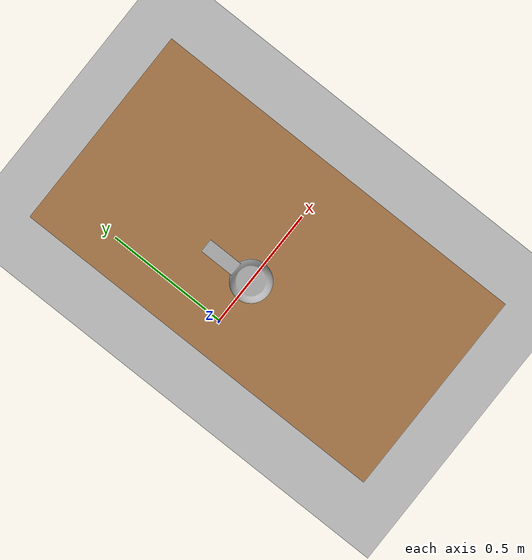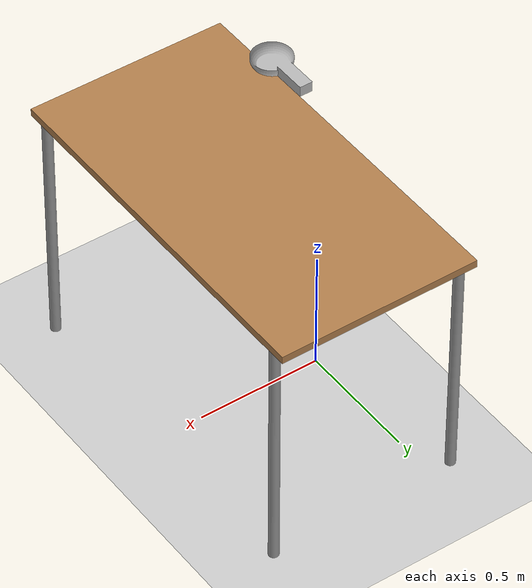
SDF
<?xml version="1.0" ?>
<sdf version="1.6">
  <world name="CRANE-X7 with Table">
    <scene>
      <shadows>0</shadows>
    </scene>

    <include>
      <uri>model://sun</uri>
    </include>

    <model name="table">
      <include>
        <uri>model://table</uri>
      </include>

      <!-- X7を机の端に配置するため、机を移動、回転する -->
      <pose>0.29 0 0 0 0 1.5708</pose>
    </model>

    <model name="flypan">
      <include>
        <uri>model://flypan</uri>
      </include>

      <pose>0.20 0 1.0 0 0 0</pose>
    </model>

    <model name="ground_plane">
      <include>
        <uri>model://ground_plane</uri>
      </include>

      <joint name='ground_joint' type='fixed'>
        <parent>ground_plane::link</parent>
        <child>table::link</child>
      </joint>
    </model>
  </world>
</sdf>

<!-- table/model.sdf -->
<sdf version="1.5">
  <model name="table">
    <static>true</static>
    <link name="link">
      <collision name="surface">
        <pose>0 0 1.0 0 0 0</pose>
        <geometry>
          <box>
            <size>1.5 0.8 0.03</size>
          </box>
        </geometry>
        <surface>
          <friction>
            <ode>
              <mu>0.6</mu>
              <mu2>0.6</mu2>
            </ode>
          </friction>
        </surface>
      </collision>
      <visual name="visual1">
        <pose>0 0 1.0 0 0 0</pose>
        <geometry>
          <box>
            <size>1.5 0.8 0.03</size>
          </box>
        </geometry>
        <material>
          <script>
            <uri>model://media/materials/scripts/gazebo.material</uri>
            <name>Gazebo/Wood</name>
          </script>
        </material>
      </visual>
      <collision name="front_left_leg">
        <pose>0.68 0.38 0.5 0 0 0</pose>
        <geometry>
          <cylinder>
            <radius>0.02</radius>
            <length>1.0</length>
          </cylinder>
        </geometry>
      </collision>
      <visual name="front_left_leg">
        <pose>0.68 0.38 0.5 0 0 0</pose>
        <geometry>
          <cylinder>
            <radius>0.02</radius>
            <length>1.0</length>
          </cylinder>
        </geometry>
        <material>
          <script>
            <uri>model://media/materials/scripts/gazebo.material</uri>
            <name>Gazebo/Grey</name>
          </script>
        </material>
      </visual>
      <collision name="front_right_leg">
        <pose>0.68 -0.38 0.5 0 0 0</pose>
        <geometry>
          <cylinder>
            <radius>0.02</radius>
            <length>1.0</length>
          </cylinder>
        </geometry>
      </collision>
      <visual name="front_right_leg">
        <pose>0.68 -0.38 0.5 0 0 0</pose>
        <geometry>
          <cylinder>
            <radius>0.02</radius>
            <length>1.0</length>
          </cylinder>
        </geometry>
        <material>
          <script>
            <uri>model://media/materials/scripts/gazebo.material</uri>
            <name>Gazebo/Grey</name>
          </script>
        </material>
      </visual>
      <collision name="back_right_leg">
        <pose>-0.68 -0.38 0.5 0 0 0</pose>
        <geometry>
          <cylinder>
            <radius>0.02</radius>
            <length>1.0</length>
          </cylinder>
        </geometry>
      </collision>
      <visual name="back_right_leg">
        <pose>-0.68 -0.38 0.5 0 0 0</pose>
        <geometry>
          <cylinder>
            <radius>0.02</radius>
            <length>1.0</length>
          </cylinder>
        </geometry>
        <material>
          <script>
            <uri>model://media/materials/scripts/gazebo.material</uri>
            <name>Gazebo/Grey</name>
          </script>
        </material>
      </visual>
      <collision name="back_left_leg">
        <pose>-0.68 0.38 0.5 0 0 0</pose>
        <geometry>
          <cylinder>
            <radius>0.02</radius>
            <length>1.0</length>
          </cylinder>
        </geometry>
      </collision>
      <visual name="back_left_leg">
        <pose>-0.68 0.38 0.5 0 0 0</pose>
        <geometry>
          <cylinder>
            <radius>0.02</radius>
            <length>1.0</length>
          </cylinder>
        </geometry>
        <material>
          <script>
            <uri>model://media/materials/scripts/gazebo.material</uri>
            <name>Gazebo/Grey</name>
          </script>
        </material>
      </visual>
    </link>
  </model>
</sdf>

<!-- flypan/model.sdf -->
<sdf version="1.6">
<model name="flypan">
  <pose>0 0 0.5 0 0 0</pose>
    <link name="link">
      <inertial>
        <mass>0.02</mass>
        <inertia>
          <ixx>0.002556195217</ixx>
          <ixy>0.0</ixy>
          <ixz>0.0</ixz>
          <iyy>0.000318732456</iyy>
          <iyz>0.0</iyz>
          <izz>0.002542478016</izz>
        </inertia>
      </inertial>
      <collision name="collision">
        <geometry>
          <mesh>
            <uri>model://flypan/flypan_50x40.dae</uri>
          </mesh>
        </geometry>
      </collision>
      <visual name="visual">
        <geometry>
          <mesh>
            <uri>model://flypan/flypan_50x40.dae</uri>
          </mesh>
        </geometry>
      </visual>
    </link>
  </model>
</sdf>
